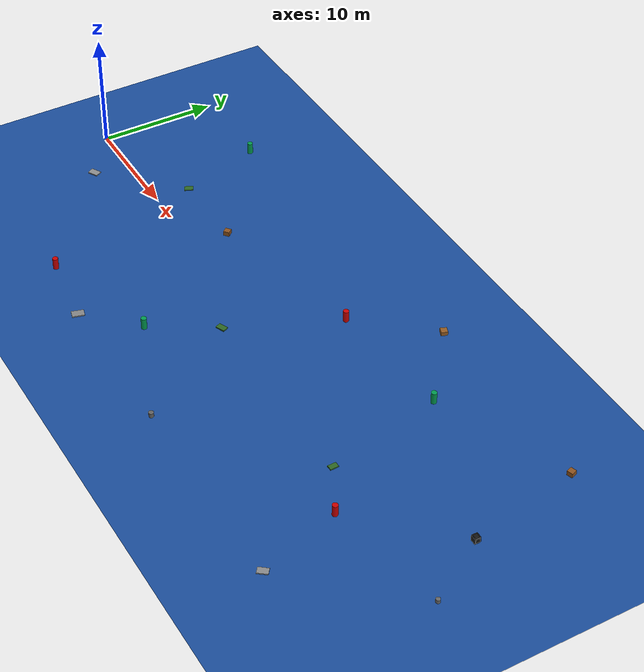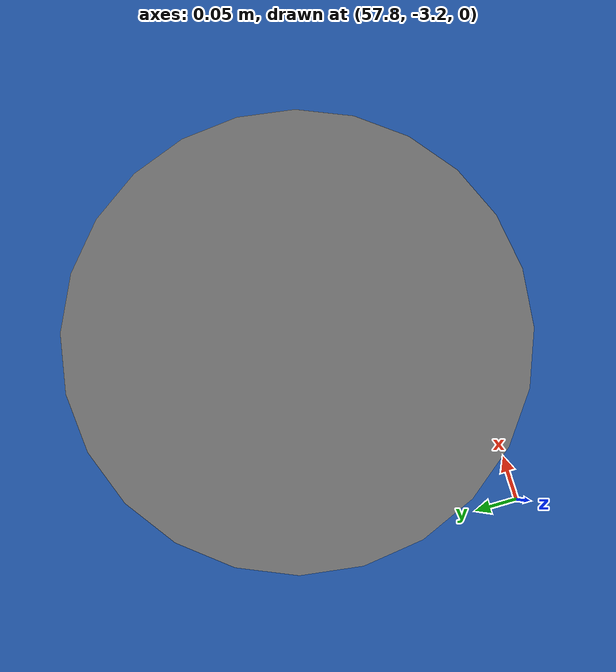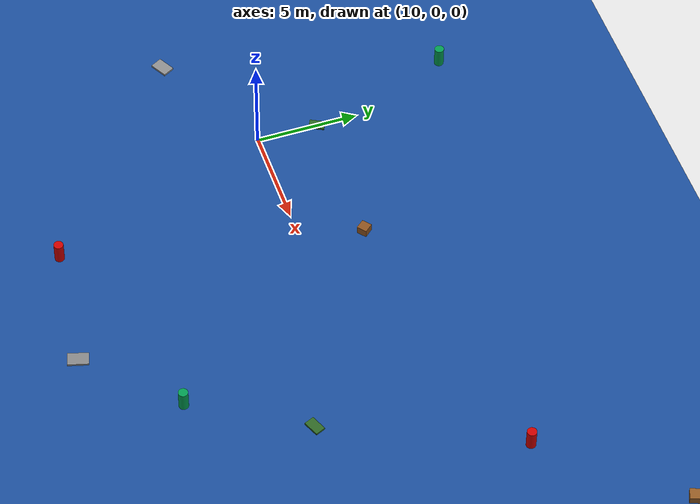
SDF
<sdf version="1.10">
 <world name="course_2_search_field">
  <physics name="1ms" type="ignore">
   <max_step_size>0.001</max_step_size>
   <real_time_factor>1.0</real_time_factor>
  </physics>
  <plugin filename="gz-sim-physics-system" name="gz::sim::systems::Physics"/>
  <plugin filename="gz-sim-sensors-system" name="gz::sim::systems::Sensors">
   <render_engine>ogre2</render_engine>
  </plugin>
  <plugin filename="gz-sim-user-commands-system" name="gz::sim::systems::UserCommands"/>
  <plugin filename="gz-sim-scene-broadcaster-system" name="gz::sim::systems::SceneBroadcaster"/>
  <plugin filename="gz-sim-imu-system" name="gz::sim::systems::Imu"/>
  <plugin filename="gz-sim-navsat-system" name="gz::sim::systems::NavSat"/>
  <spherical_coordinates>
   <surface_model>EARTH_WGS84</surface_model>
   <latitude_deg>-35.363262</latitude_deg>
   <longitude_deg>149.165237</longitude_deg>
   <elevation>0</elevation>
   <heading_deg>0</heading_deg>
  </spherical_coordinates>
  <scene>
   <ambient>0.4 0.4 0.4 1.0</ambient>
   <background>0.6 0.7 0.85 1.0</background>
   <shadows>true</shadows>
  </scene>
  <light name="sun" type="directional">
   <pose>0 0 120 0 0 0</pose>
   <diffuse>0.9 0.9 0.9 1</diffuse>
   <specular>0.4 0.4 0.4 1</specular>
   <attenuation>
    <range>1000</range>
    <constant>0.9</constant>
    <linear>0.01</linear>
    <quadratic>0.001</quadratic>
   </attenuation>
   <direction>0.5 -0.5 -1.0</direction>
  </light>
  <model name="axes">
   <static>1</static>
   <link name="link">
    <sensor name="navsat_sensor" type="navsat"><always_on>1</always_on><update_rate>1</update_rate></sensor>
   </link>
  </model>
  <model name="ocean_surface">
   <static>true</static>
   <link name="water_link">
    <collision name="water_collision">
     <geometry><plane><normal>0 0 1</normal><size>500 500</size></plane></geometry>
    </collision>
   </link>
  </model>
  <include><uri>coast_waves</uri><name>ocean_waves</name></include>
  <plugin filename="libPublisherPlugin.so" name="vrx::PublisherPlugin">
   <message type="gz.msgs.Param" topic="/vrx/wavefield/parameters" every="2.0">params { key: "direction"  value { type: DOUBLE double_value: 0.0 } }
        params { key: "gain"       value { type: DOUBLE double_value: 0.5 } }
        params { key: "period"     value { type: DOUBLE double_value: 5   } }
        params { key: "steepness" value { type: DOUBLE double_value: 0   } }</message>
  </plugin>
  <model name="green1">
   <static>true</static>
   <pose>8 10 0.5 0 0 0</pose>
   <link name="link">
    <visual name="visual">
     <geometry><cylinder><radius>0.23</radius><length>0.99</length></cylinder></geometry>
     <material>
      <ambient>0.0 0.4 0.20 1</ambient>
      <diffuse>0.0 0.6 0.31 1</diffuse>
      <emissive>0.0 1.0 0.51 1</emissive>
     </material>
    </visual>
   </link>
  </model>
  <model name="green2">
   <static>true</static>
   <pose>24 -8 0.5 0 0 0</pose>
   <link name="link">
    <visual name="visual">
     <geometry><cylinder><radius>0.23</radius><length>0.99</length></cylinder></geometry>
     <material>
      <ambient>0.0 0.4 0.20 1</ambient>
      <diffuse>0.0 0.6 0.31 1</diffuse>
      <emissive>0.0 1.0 0.51 1</emissive>
     </material>
    </visual>
   </link>
  </model>
  <model name="green3">
   <static>true</static>
   <pose>42 7 0.5 0 0 0</pose>
   <link name="link">
    <visual name="visual">
     <geometry><cylinder><radius>0.23</radius><length>0.99</length></cylinder></geometry>
     <material>
      <ambient>0.0 0.4 0.20 1</ambient>
      <diffuse>0.0 0.6 0.31 1</diffuse>
      <emissive>0.0 1.0 0.51 1</emissive>
     </material>
    </visual>
   </link>
  </model>
  <model name="red1">
   <static>true</static>
   <pose>14 -11 0.5 0 0 0</pose>
   <link name="link">
    <visual name="visual">
     <geometry><cylinder><radius>0.23</radius><length>0.99</length></cylinder></geometry>
     <material>
      <ambient>0.5 0.0 0.0 1</ambient>
      <diffuse>0.8 0.0 0.0 1</diffuse>
      <emissive>1.0 0.0 0.0 1</emissive>
     </material>
    </visual>
   </link>
  </model>
  <model name="red2">
   <static>true</static>
   <pose>31 6 0.5 0 0 0</pose>
   <link name="link">
    <visual name="visual">
     <geometry><cylinder><radius>0.23</radius><length>0.99</length></cylinder></geometry>
     <material>
      <ambient>0.5 0.0 0.0 1</ambient>
      <diffuse>0.8 0.0 0.0 1</diffuse>
      <emissive>1.0 0.0 0.0 1</emissive>
     </material>
    </visual>
   </link>
  </model>
  <model name="red3">
   <static>true</static>
   <pose>48 -5 0.5 0 0 0</pose>
   <link name="link">
    <visual name="visual">
     <geometry><cylinder><radius>0.23</radius><length>0.99</length></cylinder></geometry>
     <material>
      <ambient>0.5 0.0 0.0 1</ambient>
      <diffuse>0.8 0.0 0.0 1</diffuse>
      <emissive>1.0 0.0 0.0 1</emissive>
     </material>
    </visual>
   </link>
  </model>
  <model name="light_buoy">
   <static>true</static>
   <pose>55 2 0.5 0 0 0</pose>
   <link name="link">
    <visual name="body">
     <geometry><box><size>0.5 0.5 0.5</size></box></geometry>
     <material>
      <ambient>0.1 0.1 0.1 1</ambient>
      <diffuse>0.1 0.1 0.1 1</diffuse>
      <specular>0.2 0.2 0.2 1</specular>
     </material>
    </visual>
    <visual name="led_face">
     <pose>0.251 0 0 0 0 0</pose>
     <geometry><box><size>0.01 0.35 0.35</size></box></geometry>
     <material>
      <ambient>0.08 0.08 0.08 1</ambient>
      <diffuse>0.08 0.08 0.08 1</diffuse>
      <specular>0.2 0.2 0.2 1</specular>
     </material>
    </visual>
    <visual name="led_top">
     <pose>0 0 0.251 0 0 0</pose>
     <geometry><box><size>0.35 0.35 0.01</size></box></geometry>
     <material>
      <ambient>0.08 0.08 0.08 1</ambient>
      <diffuse>0.08 0.08 0.08 1</diffuse>
      <specular>0.2 0.2 0.2 1</specular>
     </material>
    </visual>
    <light name="pulse_led" type="point">
     <pose>0.3 0 0 0 0 0</pose>
     <diffuse>1.0 0.0 0.0 1</diffuse>
     <specular>0.2 0.0 0.0 1</specular>
     <attenuation>
      <range>30</range>
      <constant>0.3</constant>
      <linear>0.02</linear>
      <quadratic>0.002</quadratic>
     </attenuation>
    </light>
   </link>
  </model>
  <model name="d2_gray_a">
   <static>true</static>
   <pose>4 -3.0 0.05 0 0 0.5</pose>
   <link name="l">
    <visual name="v">
     <geometry><box><size>0.9 0.6 0.10</size></box></geometry>
     <material><ambient>0.45 0.45 0.45 1</ambient><diffuse>0.55 0.55 0.55 1</diffuse></material>
    </visual>
   </link>
  </model>
  <model name="d2_gray_b">
   <static>true</static>
   <pose>20 -11.8 0.05 0 0 1.3</pose>
   <link name="l">
    <visual name="v">
     <geometry><box><size>1.0 0.65 0.10</size></box></geometry>
     <material><ambient>0.42 0.42 0.42 1</ambient><diffuse>0.52 0.52 0.52 1</diffuse></material>
    </visual>
   </link>
  </model>
  <model name="d2_gray_c">
   <static>true</static>
   <pose>50 -11.8 0.05 0 0 0.9</pose>
   <link name="l">
    <visual name="v">
     <geometry><box><size>0.85 0.55 0.10</size></box></geometry>
     <material><ambient>0.44 0.44 0.44 1</ambient><diffuse>0.54 0.54 0.54 1</diffuse></material>
    </visual>
   </link>
  </model>
  <model name="d2_olive_a">
   <static>true</static>
   <pose>10 3.0 0.05 0 0 1.1</pose>
   <link name="l">
    <visual name="v">
     <geometry><box><size>0.75 0.48 0.10</size></box></geometry>
     <material><ambient>0.12 0.28 0.10 1</ambient><diffuse>0.18 0.40 0.14 1</diffuse></material>
    </visual>
   </link>
  </model>
  <model name="d2_olive_b">
   <static>true</static>
   <pose>27 -2.8 0.05 0 0 0.4</pose>
   <link name="l">
    <visual name="v">
     <geometry><box><size>0.80 0.50 0.10</size></box></geometry>
     <material><ambient>0.12 0.28 0.10 1</ambient><diffuse>0.18 0.40 0.14 1</diffuse></material>
    </visual>
   </link>
  </model>
  <model name="d2_olive_c">
   <static>true</static>
   <pose>44 -2.8 0.05 0 0 1.6</pose>
   <link name="l">
    <visual name="v">
     <geometry><box><size>0.70 0.45 0.10</size></box></geometry>
     <material><ambient>0.12 0.28 0.10 1</ambient><diffuse>0.18 0.40 0.14 1</diffuse></material>
    </visual>
   </link>
  </model>
  <model name="d2_brown_a">
   <static>true</static>
   <pose>17 3.0 0.20 0 0 0.7</pose>
   <link name="l">
    <visual name="v">
     <geometry><box><size>0.5 0.5 0.40</size></box></geometry>
     <material><ambient>0.38 0.22 0.08 1</ambient><diffuse>0.55 0.32 0.12 1</diffuse></material>
    </visual>
   </link>
  </model>
  <model name="d2_brown_b">
   <static>true</static>
   <pose>36 11.8 0.18 0 0 1.2</pose>
   <link name="l">
    <visual name="v">
     <geometry><box><size>0.55 0.55 0.35</size></box></geometry>
     <material><ambient>0.40 0.25 0.10 1</ambient><diffuse>0.58 0.36 0.14 1</diffuse></material>
    </visual>
   </link>
  </model>
  <model name="d2_brown_c">
   <static>true</static>
   <pose>53 11.5 0.20 0 0 0.3</pose>
   <link name="l">
    <visual name="v">
     <geometry><box><size>0.50 0.50 0.40</size></box></geometry>
     <material><ambient>0.38 0.22 0.08 1</ambient><diffuse>0.55 0.32 0.12 1</diffuse></material>
    </visual>
   </link>
  </model>
  <model name="d2_barrel_a">
   <static>true</static>
   <pose>33 -11.8 0.20 0 0 0</pose>
   <link name="l">
    <visual name="v">
     <geometry><cylinder><radius>0.20</radius><length>0.40</length></cylinder></geometry>
     <material><ambient>0.30 0.30 0.30 1</ambient><diffuse>0.38 0.38 0.38 1</diffuse></material>
    </visual>
   </link>
  </model>
  <model name="d2_barrel_b">
   <static>true</static>
   <pose>58 -3.0 0.15 0 0 0</pose>
   <link name="l">
    <visual name="v">
     <geometry><cylinder><radius>0.18</radius><length>0.30</length></cylinder></geometry>
     <material><ambient>0.32 0.32 0.32 1</ambient><diffuse>0.40 0.40 0.40 1</diffuse></material>
    </visual>
   </link>
  </model>
 </world>
</sdf>

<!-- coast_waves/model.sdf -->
<!-- Stub for coast_waves: used in Docker/headless tests where vrx_gz is not installed.
     The full coast_waves mesh (waterlow.dae + libWaveVisual.so) requires vrx_gz. -->
<sdf version="1.9">
  <model name="coast_waves">
    <static>true</static>
    <link name="link">
      <visual name="water_plane">
        <geometry>
          <plane>
            <normal>0 0 1</normal>
            <size>6000 6000</size>
          </plane>
        </geometry>
        <material>
          <ambient>0.1 0.3 0.6 0.8</ambient>
          <diffuse>0.1 0.3 0.6 0.8</diffuse>
        </material>
      </visual>
    </link>
  </model>
</sdf>
